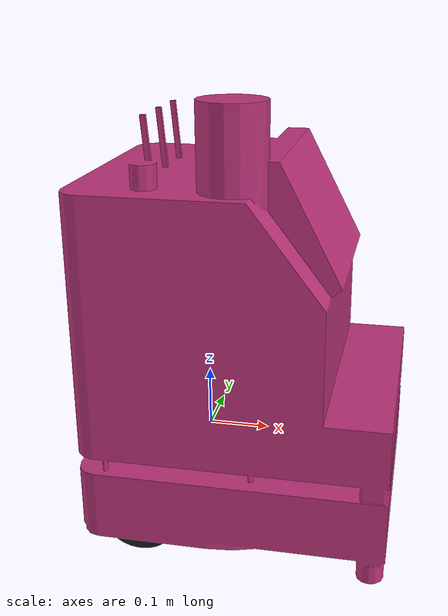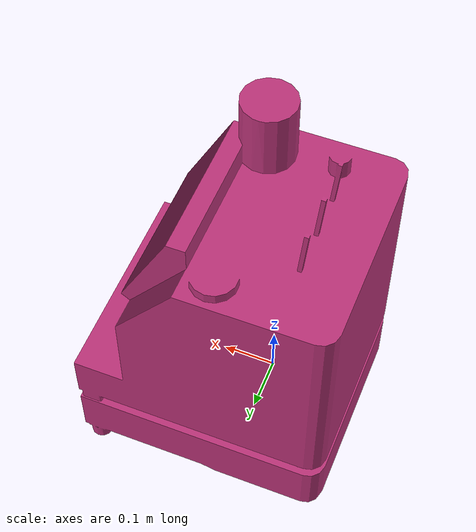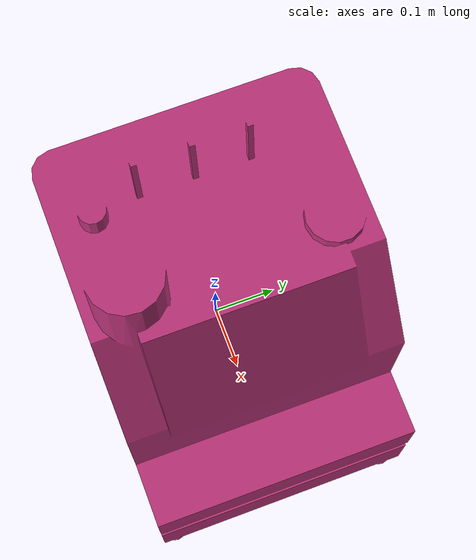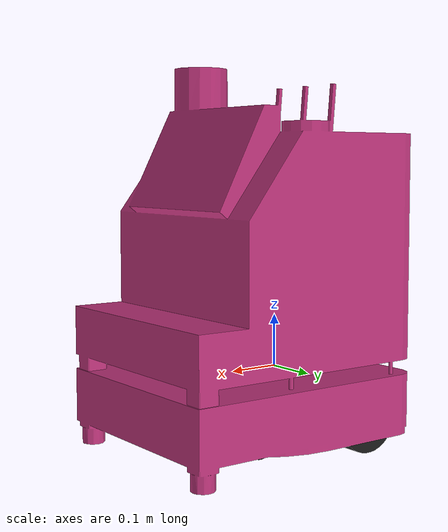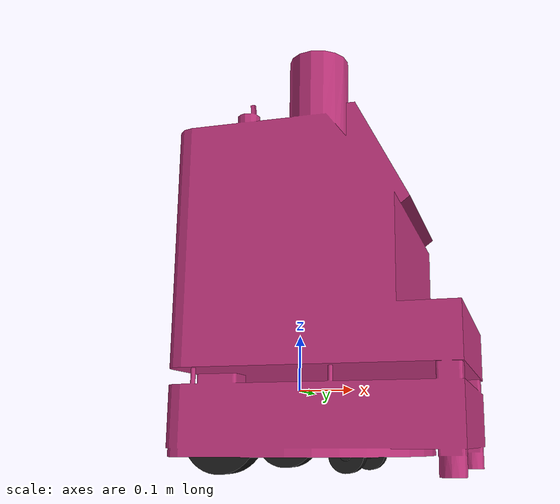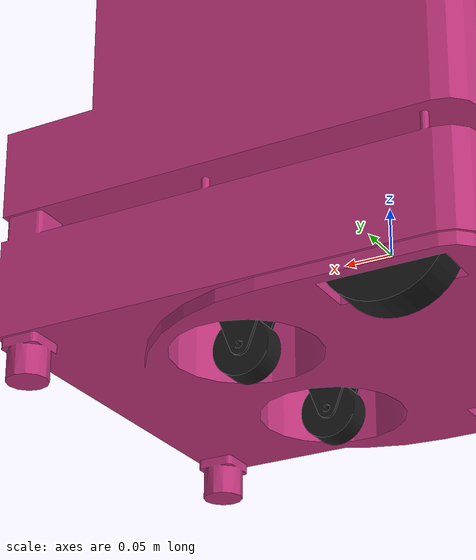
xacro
<?xml version="1.0" encoding="utf-8"?>
<robot xmlns:xacro="http://www.ros.org/wiki/xacro">

<xacro:property name="mesh_path" value="file://$(find frida_description)/urdf/meshes/TMR2025/" />
<xacro:property name="material_rgba" value="0.745 0.203 0.482 1" />
<xacro:property name="black_rgba" value="0.102 0.102 0.102 1" />
<xacro:property name="intel_rgba" value="0.776 0.757 0.737 1" />

<xacro:include filename="base.xacro"/>
<xacro:include filename="wheels.xacro"/>
<xacro:include filename="castwheel.xacro"/>
<xacro:include filename="lidar.xacro"/>
<xacro:include filename="realsense.xacro"/>
<xacro:include filename="$(find frida_description)/urdf/RoboCup2024/imu.xacro"/>

</robot>

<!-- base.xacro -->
<robot xmlns:xacro="http://www.ros.org/wiki/xacro">

  <link name="base_link">
    <inertial>
      <origin xyz="0.031681 -0.0052694 0.10165" rpy="0 0 0" />
      <mass value="200.075" />
      <inertia ixx="0.44959" ixy="-0.005113" ixz="0.017804"
               iyy="0.46194" iyz="-0.00061969" izz="0.78515" />
    </inertial>
    <visual>
      <origin xyz="0 0 0" rpy="0 0 0" />
      <geometry>
        <mesh filename="${mesh_path}base_link.STL" />
      </geometry>
      <material name="">
        <color rgba="${material_rgba}" />
      </material>
    </visual>
    <collision>
      <origin xyz="0 0 0" rpy="0 0 0" />
      <geometry>
        <mesh filename="${mesh_path}base_link_collision.stl" />
      </geometry>
    </collision>
  </link>

  <link name="base_footprint" />
  <joint name = "base_footprint_joint" type="fixed">
    <parent link="base_footprint"/>
    <child link="base_link"/>
    <origin xyz="0 0 0" rpy="0 0 0 "/>
    <axis xyz="0 0 1"/>
  </joint>

  <link name="xarm_base" />
  <joint name="xarm_base_joint" type="fixed">
    <origin xyz="0.036105613000001 0 0.441000000000001" rpy="0 0 1.57" />
    <parent link="base_link" />
    <child link="xarm_base" />
    <axis xyz="0 0 1"/>
  </joint>

</robot>

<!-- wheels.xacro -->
<robot xmlns:xacro="http://www.ros.org/wiki/xacro">

  <xacro:macro name="wheel_link" params="prefix xyz joint_origin">
    <link name="${prefix}_wheel">
      <inertial>
        <origin xyz="${xyz}" rpy="0 0 0" />
        <mass value="100.528918539158378" />
        <inertia ixx="0.00063131" ixy="6.14301607073899E-41" ixz="-1.72050413075699E-18"
                 iyy="0.00063131" iyz="1.33885585873066E-36" izz="0.0011216" />
      </inertial>
      <visual>
        <origin xyz="0 0 0" rpy="0 0 0" />
        <geometry>
          <mesh filename="${mesh_path}${prefix}_wheel.STL" />
        </geometry>
        <material name="">
          <color rgba="${black_rgba}" />
        </material>
      </visual>
      <collision>
        <origin xyz="0 0 0" rpy="0 0 0" />
        <geometry>
          <mesh filename="${mesh_path}${prefix}_wheel.STL" />
        </geometry>
      </collision>
    </link>
    <joint name="${prefix}wheel" type="continuous">
      <origin xyz="${joint_origin}" rpy="-1.5708 0 0" />
      <parent link="base_link" />
      <child link="${prefix}_wheel" />
      <axis xyz="0 0 1" />
    </joint>
  </xacro:macro>

  <xacro:wheel_link prefix="right" xyz="7.91033905045424E-16 -6.17561557447743E-16 -3.60822483003176E-16" joint_origin="-0.075244387 -0.166 -0.0775" />
  <xacro:wheel_link prefix="left" xyz="-3.33066907387547E-16 -6.24500451351651E-16 -4.44089209850063E-16" joint_origin="-0.075244387 0.166 -0.0775" />

</robot>

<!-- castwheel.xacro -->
<robot xmlns:xacro="http://www.ros.org/wiki/xacro">

    <xacro:macro name="caster_wheel_bracket" params="prefix xyz ixy ixz iyz joint_origin">
      <link name="${prefix}_castwheel_bracket">
        <inertial>
        <origin
            xyz="${xyz}"
            rpy="0 0 0" />
        <mass
            value="0.451852451728102" />
        <inertia
            ixx="1.91437440179204E-05" ixy="${ixy}" ixz="${ixz}"
            iyy="2.03620552975365E-05" iyz="${iyz}" izz="1.58126328123224E-05" />
        </inertial>
        <visual>
        <origin xyz="0 0 0" rpy="0 0 0" />
        <geometry>
            <mesh filename="${mesh_path}${prefix}_castwheel_bracket.STL" />
        </geometry>
        <material name="">
            <color rgba="${black_rgba}" />
        </material>
        </visual>
        <collision>
        <origin xyz="0 0 0" rpy="0 0 0" />
        <geometry>
            <mesh filename="${mesh_path}${prefix}_castwheel_bracket.STL" />
        </geometry>
        </collision>
    </link>
    <joint name="${prefix}castwheelbracket" type="continuous">
        <origin xyz="${joint_origin}" rpy="3.1416 0 0" />
        <parent link="base_link" />
        <child link="${prefix}_castwheel_bracket" />
        <axis xyz="0 0 -1" />
    </joint>
    </xacro:macro>

    <xacro:caster_wheel_bracket prefix="right" xyz="2.77555756156289E-17 -2.08166817117217E-16 -0.0319709734767012" ixy="5.65290697905272E-21" ixz="-6.79719081628809E-21" iyz="-1.18762790839083E-20" joint_origin="0.112255613 -0.09 -0.112416320504547"/>
    <xacro:caster_wheel_bracket prefix="left" xyz="-1.11022302462516E-16 4.16333634234434E-17 -0.0319709734767013" ixy="9.03249326780732E-22" ixz="-4.43903476297829E-22" iyz="-9.72493121445985E-21" joint_origin="0.112255613 0.09 -0.112416320504547"/>

    <xacro:macro name="caster_wheel" params="prefix xyz ixy ixz iyz">
      <link
        name="${prefix}_cast_wheel">
        <inertial>
        <origin
            xyz="xyz"
            rpy="0 0 0" />
        <mass
            value="0.694291976443345" />
        <inertia ixx="1.95153903045283E-05" ixy="${ixy}" ixz="${ixz}"
                 iyy="1.95153903045283E-05" iyz="${iyz}" izz="3.17985725211052E-05" />
        </inertial>
        <visual>
        <origin
            xyz="0 0 0"
            rpy="0 0 0" />
        <geometry>
            <mesh
            filename="${mesh_path}${prefix}_cast_wheel.STL" />
        </geometry>
        <material name="">
            <color rgba="${black_rgba}" />
        </material>
        </visual>
        <collision>
        <origin
            xyz="0 0 0"
            rpy="0 0 0" />
        <geometry>
            <mesh filename="${mesh_path}${prefix}_cast_wheel.STL" />
        </geometry>
        </collision>
      </link>
      <joint name="${prefix}castwheel" type="continuous">
        <origin xyz="0 0 0" rpy="1.5707963267949 0 0" />
        <parent link="${prefix}_castwheel_bracket" />
        <child link="${prefix}_cast_wheel" />
        <axis xyz="0 0 1" />
      </joint>
    </xacro:macro>

    <xacro:caster_wheel prefix="right" xyz="4.16333634234434E-17 -1.34441069388203E-17 1.38777878078145E-17" ixy="-7.05128389877886E-22" ixz="-3.30872245021211E-22" iyz="-3.41901319855252E-22"/>
    <xacro:caster_wheel prefix="left" xyz="0 8.67361737988404E-19 2.77555756156289E-17" ixy="-7.4724136116802E-22" ixz="-3.29900618130813E-21" iyz="-3.03150518992427E-21"/>

</robot>

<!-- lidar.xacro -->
<robot xmlns:xacro="http://www.ros.org/wiki/xacro">

<link name="laser">
    <inertial>
      <origin xyz="-1.3878E-17 3.3818E-34 -0.0125" rpy="0 0 0" />
      <mass value="0.096211" />
      <inertia ixx="3.4476E-05" ixy="-1.3255E-52" ixz="6.0099E-37"
               iyy="3.4476E-05" iyz="8.1342E-38" izz="5.8929E-05" />
    </inertial>
    <visual>
      <origin xyz="0 0 0" rpy="0 0 0" />
      <geometry>
        <mesh filename="${mesh_path}LIDAR.STL" />
      </geometry>
      <material name="">
        <color rgba="${black_rgba}" />
      </material>
    </visual>
    <collision>
      <origin xyz="0 0 0" rpy="0 0 0" />
      <geometry>
        <mesh filename="${mesh_path}LIDAR.STL" />
      </geometry>
    </collision>
  </link>
  <joint name="lidar" type="fixed">
    <origin xyz="0.16 0 0.002" rpy="0 0 3.14" />
    <parent link="base_link" />
    <child link="laser" />
    <axis xyz="0 0 1"/>
  </joint>

<link name="imu_base">
    <inertial>
      <origin xyz="-1.3878E-17 3.3818E-34 -0.0125" rpy="0 0 0" />
      <mass value="0.096211" />
      <inertia ixx="3.4476E-05" ixy="-1.3255E-52" ixz="6.0099E-37"
               iyy="3.4476E-05" iyz="8.1342E-38" izz="5.8929E-05" />
    </inertial>
    <visual>
      <origin xyz="0 0 0" rpy="0 0 0" />
      <material name="">
        <color rgba="${black_rgba}" />
      </material>
      <geometry>
        <box size="0.01 0.01 0.01"/>
      </geometry>
    </visual>
    <collision>
      <origin xyz="0 0 0" rpy="0 0 0" />
      <geometry>
        <box size="0.001 0.001 0.001"/>
      </geometry>
    </collision>
  </link>
  <joint name="imu_base_joint" type="fixed">
    <origin xyz="0.15026 0 0.002" rpy="3.1416 3.1416 1.57" />
    <parent link="base_link" />
    <child link="imu_base" />
    <axis xyz="0 0 1"/>
  </joint>

</robot>

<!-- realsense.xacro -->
<robot xmlns:xacro="http://www.ros.org/wiki/xacro">

 <link name="intel_realsense">
    <inertial>
      <origin xyz="-0.000276500325472787 -3.68172093455318E-07 -6.47494519674385E-05" rpy="0 0 0" />
      <mass value="0.048201" />
      <inertia ixx="2.7391E-05" ixy="-4.2599E-07" ixz="5.14365274506557E-08"
               iyy="3.3506E-06" iyz="-2.32499967543505E-08" izz="2.6652E-05" />
    </inertial>
    <visual>
      <origin xyz="0 0 0" rpy="0 0 0" />
      <geometry>
        <mesh filename="${mesh_path}intel_realsense.STL" />
      </geometry>
      <material name="">
        <color rgba="${intel_rgba}" />
      </material>
    </visual>
    <collision>
      <origin xyz="0 0 0" rpy="0 0 0" />
      <geometry>
        <mesh filename="${mesh_path}intel_realsense.STL" />
      </geometry>
    </collision>
  </link>
  <joint name="intelrealsense" type="fixed">
    <origin xyz="0.140953490988428 0 0.428947355746093" rpy="0 0 0" />
    <parent link="base_link" />
    <child link="intel_realsense" />
    <axis xyz="0 0 1"/>
  </joint>

</robot>

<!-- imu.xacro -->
<robot xmlns:xacro="http://www.ros.org/wiki/xacro">

<link name="imu_link">
  <visual>
    <geometry>
      <box size="0.02 0.02 0.02"/> <!-- Adjust the size as needed -->
    </geometry>
    <material name="yellow"/>
  </visual>
  <inertial>
    <mass value="0.01"/> <!-- Adjust mass -->
    <inertia ixx="0.00001" ixy="0.0" ixz="0.0" iyy="0.00001" iyz="0.0" izz="0.00001"/>
    <origin xyz="0 0 0" rpy="0 0 0"></origin>
  </inertial>
</link>
<joint name="imu_joint" type="fixed">
  <parent link="base_link"/>
  <child link="imu_link"/>
  <origin xyz="0 0 0.0" rpy="0 0 0"/>
  <axis xyz="0 0 1"/>
</joint>

</robot>
